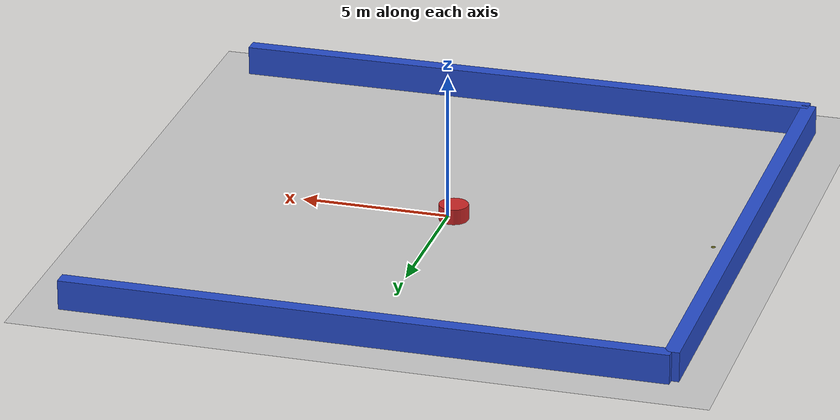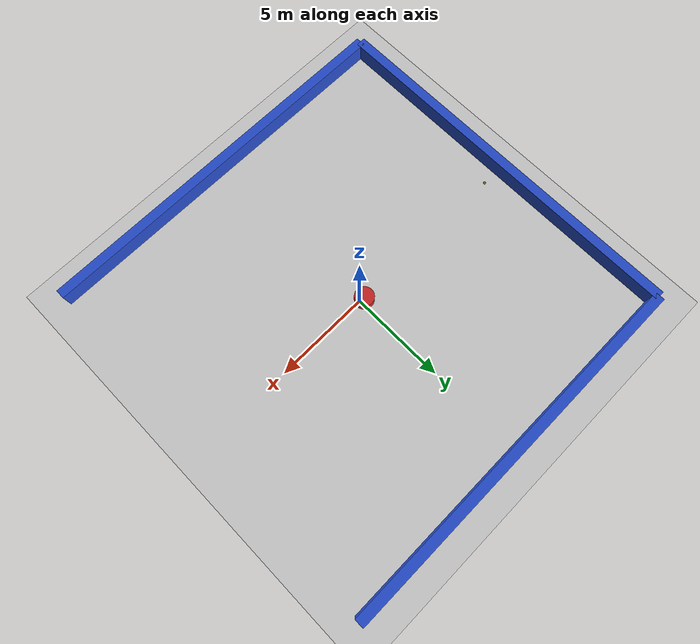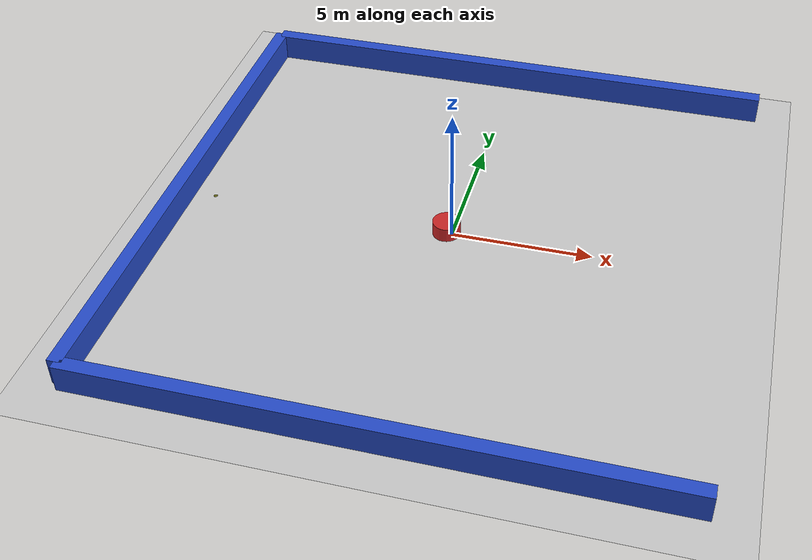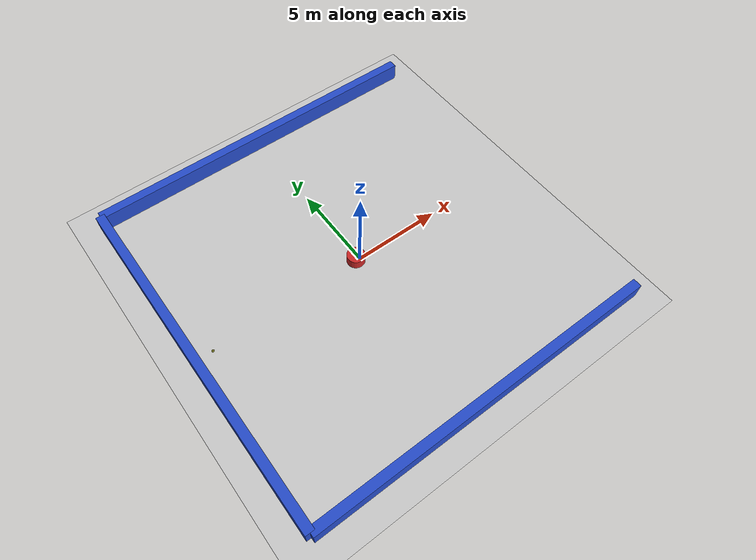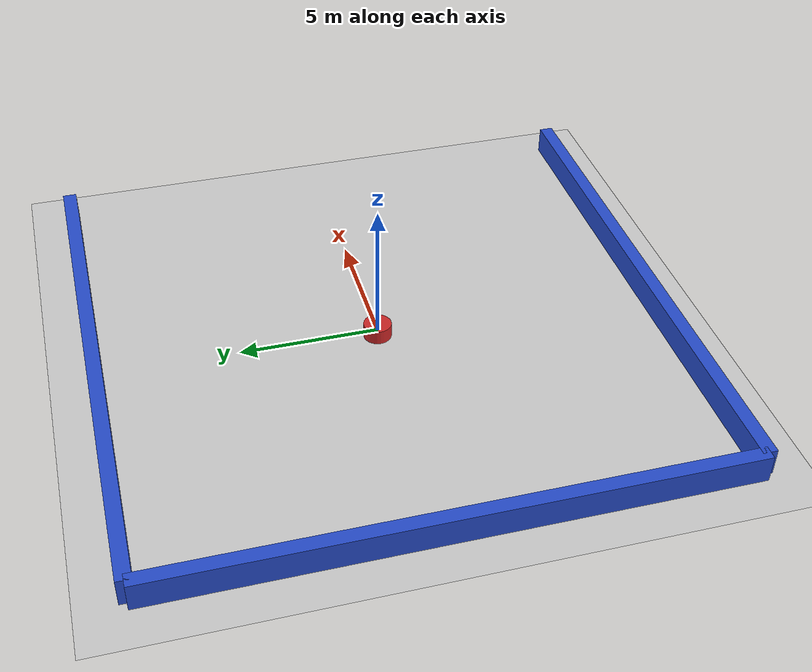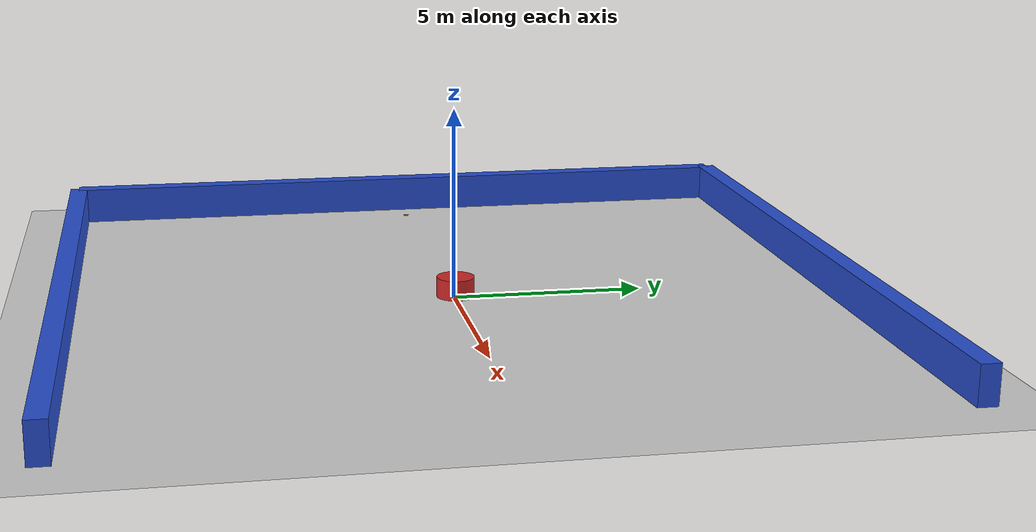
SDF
<sdf version="1.6">
   <world name="default">
      <include>
         <uri>model://ground_plane</uri>
      </include>
      <include>
         <uri>model://sun</uri>
      </include>

    <model name="hardlibobs_64">
      <static>1</static>
      <pose frame="">-0.225000 0.075000 0.000000 0.000000 0.000000 0.000000</pose>
      <link name="link">
        <inertial>
          <mass>1</mass>
          <inertia>
            <ixx>0.145833</ixx>
            <ixy>0</ixy>
            <ixz>0</ixz>
            <iyy>0.145833</iyy>
            <iyz>0</iyz>
            <izz>0.125</izz>
          </inertia>
        </inertial>
        <collision name="collision">
           <geometry>
            <cylinder>
                <radius>0.5000</radius>
                 <length> 1 </length>
            </cylinder>
          </geometry>
           <surface>
            <contact>
              <ode />
            </contact>
            <bounce />
            <friction>
              <torsional>
                <ode />
              </torsional>
              <ode />
            </friction>
          </surface>
        </collision>
        <visual name="visual">
           <geometry>
            <cylinder>
                <radius>0.5000</radius>
                 <length> 1 </length>
            </cylinder>
          </geometry>
          <material>
            <script>
              <name>Gazebo/Red</name>
              <uri>file://media/materials/scripts/gazebo.material</uri>
            </script>
          </material>
        </visual>
        <self_collide>0</self_collide>
        <kinematic>0</kinematic>
        <gravity>1</gravity>
      </link>
      <plugin name="hardlibobs_64" filename="hardlibobs_64.so" />
    </model>

    <model name="mediumlibobs_36">
      <static>1</static>
      <pose frame="">-0.225000 0.075000 0.000000 0.000000 0.000000 0.000000</pose>
      <link name="link">
        <inertial>
          <mass>1</mass>
          <inertia>
            <ixx>0.145833</ixx>
            <ixy>0</ixy>
            <ixz>0</ixz>
            <iyy>0.145833</iyy>
            <iyz>0</iyz>
            <izz>0.125</izz>
          </inertia>
        </inertial>
        <collision name="collision">
           <geometry>
            <cylinder>
                <radius>0.5000</radius>
                 <length> 1 </length>
            </cylinder>
          </geometry>
           <surface>
            <contact>
              <ode />
            </contact>
            <bounce />
            <friction>
              <torsional>
                <ode />
              </torsional>
              <ode />
            </friction>
          </surface>
        </collision>
        <visual name="visual">
           <geometry>
            <cylinder>
                <radius>0.5000</radius>
                 <length> 1 </length>
            </cylinder>
          </geometry>
          <material>
            <script>
              <name>Gazebo/Red</name>
              <uri>file://media/materials/scripts/gazebo.material</uri>
            </script>
          </material>
        </visual>
        <self_collide>0</self_collide>
        <kinematic>0</kinematic>
        <gravity>1</gravity>
      </link>
      <plugin name="mediumlibobs_36" filename="mediumlibobs_36.so" />
    </model>

    <model name="mediumlibobs_2">
      <static>1</static>
      <pose frame="">-0.225000 0.075000 0.000000 0.000000 0.000000 0.000000</pose>
      <link name="link">
        <inertial>
          <mass>1</mass>
          <inertia>
            <ixx>0.145833</ixx>
            <ixy>0</ixy>
            <ixz>0</ixz>
            <iyy>0.145833</iyy>
            <iyz>0</iyz>
            <izz>0.125</izz>
          </inertia>
        </inertial>
        <collision name="collision">
           <geometry>
            <cylinder>
                <radius>0.5000</radius>
                 <length> 1 </length>
            </cylinder>
          </geometry>
           <surface>
            <contact>
              <ode />
            </contact>
            <bounce />
            <friction>
              <torsional>
                <ode />
              </torsional>
              <ode />
            </friction>
          </surface>
        </collision>
        <visual name="visual">
           <geometry>
            <cylinder>
                <radius>0.5000</radius>
                 <length> 1 </length>
            </cylinder>
          </geometry>
          <material>
            <script>
              <name>Gazebo/Red</name>
              <uri>file://media/materials/scripts/gazebo.material</uri>
            </script>
          </material>
        </visual>
        <self_collide>0</self_collide>
        <kinematic>0</kinematic>
        <gravity>1</gravity>
      </link>
      <plugin name="mediumlibobs_2" filename="mediumlibobs_2.so" />
    </model>

    <model name="hardlibobs_157">
      <static>1</static>
      <pose frame="">-0.225000 0.075000 0.000000 0.000000 0.000000 0.000000</pose>
      <link name="link">
        <inertial>
          <mass>1</mass>
          <inertia>
            <ixx>0.145833</ixx>
            <ixy>0</ixy>
            <ixz>0</ixz>
            <iyy>0.145833</iyy>
            <iyz>0</iyz>
            <izz>0.125</izz>
          </inertia>
        </inertial>
        <collision name="collision">
           <geometry>
            <cylinder>
                <radius>0.5000</radius>
                 <length> 1 </length>
            </cylinder>
          </geometry>
           <surface>
            <contact>
              <ode />
            </contact>
            <bounce />
            <friction>
              <torsional>
                <ode />
              </torsional>
              <ode />
            </friction>
          </surface>
        </collision>
        <visual name="visual">
           <geometry>
            <cylinder>
                <radius>0.5000</radius>
                 <length> 1 </length>
            </cylinder>
          </geometry>
          <material>
            <script>
              <name>Gazebo/Red</name>
              <uri>file://media/materials/scripts/gazebo.material</uri>
            </script>
          </material>
        </visual>
        <self_collide>0</self_collide>
        <kinematic>0</kinematic>
        <gravity>1</gravity>
      </link>
      <plugin name="hardlibobs_157" filename="hardlibobs_157.so" />
    </model>

    <model name="hardlibobs_139">
      <static>1</static>
      <pose frame="">-0.225000 0.075000 0.000000 0.000000 0.000000 0.000000</pose>
      <link name="link">
        <inertial>
          <mass>1</mass>
          <inertia>
            <ixx>0.145833</ixx>
            <ixy>0</ixy>
            <ixz>0</ixz>
            <iyy>0.145833</iyy>
            <iyz>0</iyz>
            <izz>0.125</izz>
          </inertia>
        </inertial>
        <collision name="collision">
           <geometry>
            <cylinder>
                <radius>0.5000</radius>
                 <length> 1 </length>
            </cylinder>
          </geometry>
           <surface>
            <contact>
              <ode />
            </contact>
            <bounce />
            <friction>
              <torsional>
                <ode />
              </torsional>
              <ode />
            </friction>
          </surface>
        </collision>
        <visual name="visual">
           <geometry>
            <cylinder>
                <radius>0.5000</radius>
                 <length> 1 </length>
            </cylinder>
          </geometry>
          <material>
            <script>
              <name>Gazebo/Red</name>
              <uri>file://media/materials/scripts/gazebo.material</uri>
            </script>
          </material>
        </visual>
        <self_collide>0</self_collide>
        <kinematic>0</kinematic>
        <gravity>1</gravity>
      </link>
      <plugin name="hardlibobs_139" filename="hardlibobs_139.so" />
    </model>

    <model name="hardlibobs_144">
      <static>1</static>
      <pose frame="">-0.225000 0.075000 0.000000 0.000000 0.000000 0.000000</pose>
      <link name="link">
        <inertial>
          <mass>1</mass>
          <inertia>
            <ixx>0.145833</ixx>
            <ixy>0</ixy>
            <ixz>0</ixz>
            <iyy>0.145833</iyy>
            <iyz>0</iyz>
            <izz>0.125</izz>
          </inertia>
        </inertial>
        <collision name="collision">
           <geometry>
            <cylinder>
                <radius>0.5000</radius>
                 <length> 1 </length>
            </cylinder>
          </geometry>
           <surface>
            <contact>
              <ode />
            </contact>
            <bounce />
            <friction>
              <torsional>
                <ode />
              </torsional>
              <ode />
            </friction>
          </surface>
        </collision>
        <visual name="visual">
           <geometry>
            <cylinder>
                <radius>0.5000</radius>
                 <length> 1 </length>
            </cylinder>
          </geometry>
          <material>
            <script>
              <name>Gazebo/Red</name>
              <uri>file://media/materials/scripts/gazebo.material</uri>
            </script>
          </material>
        </visual>
        <self_collide>0</self_collide>
        <kinematic>0</kinematic>
        <gravity>1</gravity>
      </link>
      <plugin name="hardlibobs_144" filename="hardlibobs_144.so" />
    </model>

    <model name="hardlibobs_190">
      <static>1</static>
      <pose frame="">-0.225000 0.075000 0.000000 0.000000 0.000000 0.000000</pose>
      <link name="link">
        <inertial>
          <mass>1</mass>
          <inertia>
            <ixx>0.145833</ixx>
            <ixy>0</ixy>
            <ixz>0</ixz>
            <iyy>0.145833</iyy>
            <iyz>0</iyz>
            <izz>0.125</izz>
          </inertia>
        </inertial>
        <collision name="collision">
           <geometry>
            <cylinder>
                <radius>0.5000</radius>
                 <length> 1 </length>
            </cylinder>
          </geometry>
           <surface>
            <contact>
              <ode />
            </contact>
            <bounce />
            <friction>
              <torsional>
                <ode />
              </torsional>
              <ode />
            </friction>
          </surface>
        </collision>
        <visual name="visual">
           <geometry>
            <cylinder>
                <radius>0.5000</radius>
                 <length> 1 </length>
            </cylinder>
          </geometry>
          <material>
            <script>
              <name>Gazebo/Red</name>
              <uri>file://media/materials/scripts/gazebo.material</uri>
            </script>
          </material>
        </visual>
        <self_collide>0</self_collide>
        <kinematic>0</kinematic>
        <gravity>1</gravity>
      </link>
      <plugin name="hardlibobs_190" filename="hardlibobs_190.so" />
    </model>

    <model name="mediumlibobs_54">
      <static>1</static>
      <pose frame="">-0.225000 0.075000 0.000000 0.000000 0.000000 0.000000</pose>
      <link name="link">
        <inertial>
          <mass>1</mass>
          <inertia>
            <ixx>0.145833</ixx>
            <ixy>0</ixy>
            <ixz>0</ixz>
            <iyy>0.145833</iyy>
            <iyz>0</iyz>
            <izz>0.125</izz>
          </inertia>
        </inertial>
        <collision name="collision">
           <geometry>
            <cylinder>
                <radius>0.5000</radius>
                 <length> 1 </length>
            </cylinder>
          </geometry>
           <surface>
            <contact>
              <ode />
            </contact>
            <bounce />
            <friction>
              <torsional>
                <ode />
              </torsional>
              <ode />
            </friction>
          </surface>
        </collision>
        <visual name="visual">
           <geometry>
            <cylinder>
                <radius>0.5000</radius>
                 <length> 1 </length>
            </cylinder>
          </geometry>
          <material>
            <script>
              <name>Gazebo/Red</name>
              <uri>file://media/materials/scripts/gazebo.material</uri>
            </script>
          </material>
        </visual>
        <self_collide>0</self_collide>
        <kinematic>0</kinematic>
        <gravity>1</gravity>
      </link>
      <plugin name="mediumlibobs_54" filename="mediumlibobs_54.so" />
    </model>

    <model name="hardlibobs_117">
      <static>1</static>
      <pose frame="">-0.225000 0.075000 0.000000 0.000000 0.000000 0.000000</pose>
      <link name="link">
        <inertial>
          <mass>1</mass>
          <inertia>
            <ixx>0.145833</ixx>
            <ixy>0</ixy>
            <ixz>0</ixz>
            <iyy>0.145833</iyy>
            <iyz>0</iyz>
            <izz>0.125</izz>
          </inertia>
        </inertial>
        <collision name="collision">
           <geometry>
            <cylinder>
                <radius>0.5000</radius>
                 <length> 1 </length>
            </cylinder>
          </geometry>
           <surface>
            <contact>
              <ode />
            </contact>
            <bounce />
            <friction>
              <torsional>
                <ode />
              </torsional>
              <ode />
            </friction>
          </surface>
        </collision>
        <visual name="visual">
           <geometry>
            <cylinder>
                <radius>0.5000</radius>
                 <length> 1 </length>
            </cylinder>
          </geometry>
          <material>
            <script>
              <name>Gazebo/Red</name>
              <uri>file://media/materials/scripts/gazebo.material</uri>
            </script>
          </material>
        </visual>
        <self_collide>0</self_collide>
        <kinematic>0</kinematic>
        <gravity>1</gravity>
      </link>
      <plugin name="hardlibobs_117" filename="hardlibobs_117.so" />
    </model>

    <model name="mediumlibobs_77">
      <static>1</static>
      <pose frame="">-0.225000 0.075000 0.000000 0.000000 0.000000 0.000000</pose>
      <link name="link">
        <inertial>
          <mass>1</mass>
          <inertia>
            <ixx>0.145833</ixx>
            <ixy>0</ixy>
            <ixz>0</ixz>
            <iyy>0.145833</iyy>
            <iyz>0</iyz>
            <izz>0.125</izz>
          </inertia>
        </inertial>
        <collision name="collision">
           <geometry>
            <cylinder>
                <radius>0.5000</radius>
                 <length> 1 </length>
            </cylinder>
          </geometry>
           <surface>
            <contact>
              <ode />
            </contact>
            <bounce />
            <friction>
              <torsional>
                <ode />
              </torsional>
              <ode />
            </friction>
          </surface>
        </collision>
        <visual name="visual">
           <geometry>
            <cylinder>
                <radius>0.5000</radius>
                 <length> 1 </length>
            </cylinder>
          </geometry>
          <material>
            <script>
              <name>Gazebo/Red</name>
              <uri>file://media/materials/scripts/gazebo.material</uri>
            </script>
          </material>
        </visual>
        <self_collide>0</self_collide>
        <kinematic>0</kinematic>
        <gravity>1</gravity>
      </link>
      <plugin name="mediumlibobs_77" filename="mediumlibobs_77.so" />
    </model>

    <model name="hardlibobs_21">
      <static>1</static>
      <pose frame="">-0.225000 0.075000 0.000000 0.000000 0.000000 0.000000</pose>
      <link name="link">
        <inertial>
          <mass>1</mass>
          <inertia>
            <ixx>0.145833</ixx>
            <ixy>0</ixy>
            <ixz>0</ixz>
            <iyy>0.145833</iyy>
            <iyz>0</iyz>
            <izz>0.125</izz>
          </inertia>
        </inertial>
        <collision name="collision">
           <geometry>
            <cylinder>
                <radius>0.5000</radius>
                 <length> 1 </length>
            </cylinder>
          </geometry>
           <surface>
            <contact>
              <ode />
            </contact>
            <bounce />
            <friction>
              <torsional>
                <ode />
              </torsional>
              <ode />
            </friction>
          </surface>
        </collision>
        <visual name="visual">
           <geometry>
            <cylinder>
                <radius>0.5000</radius>
                 <length> 1 </length>
            </cylinder>
          </geometry>
          <material>
            <script>
              <name>Gazebo/Red</name>
              <uri>file://media/materials/scripts/gazebo.material</uri>
            </script>
          </material>
        </visual>
        <self_collide>0</self_collide>
        <kinematic>0</kinematic>
        <gravity>1</gravity>
      </link>
      <plugin name="hardlibobs_21" filename="hardlibobs_21.so" />
    </model>

    <model name="mediumlibobs_150">
      <static>1</static>
      <pose frame="">-0.225000 0.075000 0.000000 0.000000 0.000000 0.000000</pose>
      <link name="link">
        <inertial>
          <mass>1</mass>
          <inertia>
            <ixx>0.145833</ixx>
            <ixy>0</ixy>
            <ixz>0</ixz>
            <iyy>0.145833</iyy>
            <iyz>0</iyz>
            <izz>0.125</izz>
          </inertia>
        </inertial>
        <collision name="collision">
           <geometry>
            <cylinder>
                <radius>0.5000</radius>
                 <length> 1 </length>
            </cylinder>
          </geometry>
           <surface>
            <contact>
              <ode />
            </contact>
            <bounce />
            <friction>
              <torsional>
                <ode />
              </torsional>
              <ode />
            </friction>
          </surface>
        </collision>
        <visual name="visual">
           <geometry>
            <cylinder>
                <radius>0.5000</radius>
                 <length> 1 </length>
            </cylinder>
          </geometry>
          <material>
            <script>
              <name>Gazebo/Red</name>
              <uri>file://media/materials/scripts/gazebo.material</uri>
            </script>
          </material>
        </visual>
        <self_collide>0</self_collide>
        <kinematic>0</kinematic>
        <gravity>1</gravity>
      </link>
      <plugin name="mediumlibobs_150" filename="mediumlibobs_150.so" />
    </model>

    <model name="mediumlibobs_199">
      <static>1</static>
      <pose frame="">-0.225000 0.075000 0.000000 0.000000 0.000000 0.000000</pose>
      <link name="link">
        <inertial>
          <mass>1</mass>
          <inertia>
            <ixx>0.145833</ixx>
            <ixy>0</ixy>
            <ixz>0</ixz>
            <iyy>0.145833</iyy>
            <iyz>0</iyz>
            <izz>0.125</izz>
          </inertia>
        </inertial>
        <collision name="collision">
           <geometry>
            <cylinder>
                <radius>0.5000</radius>
                 <length> 1 </length>
            </cylinder>
          </geometry>
           <surface>
            <contact>
              <ode />
            </contact>
            <bounce />
            <friction>
              <torsional>
                <ode />
              </torsional>
              <ode />
            </friction>
          </surface>
        </collision>
        <visual name="visual">
           <geometry>
            <cylinder>
                <radius>0.5000</radius>
                 <length> 1 </length>
            </cylinder>
          </geometry>
          <material>
            <script>
              <name>Gazebo/Red</name>
              <uri>file://media/materials/scripts/gazebo.material</uri>
            </script>
          </material>
        </visual>
        <self_collide>0</self_collide>
        <kinematic>0</kinematic>
        <gravity>1</gravity>
      </link>
      <plugin name="mediumlibobs_199" filename="mediumlibobs_199.so" />
    </model>

    <model name="hardlibobs_65">
      <static>1</static>
      <pose frame="">-0.225000 0.075000 0.000000 0.000000 0.000000 0.000000</pose>
      <link name="link">
        <inertial>
          <mass>1</mass>
          <inertia>
            <ixx>0.145833</ixx>
            <ixy>0</ixy>
            <ixz>0</ixz>
            <iyy>0.145833</iyy>
            <iyz>0</iyz>
            <izz>0.125</izz>
          </inertia>
        </inertial>
        <collision name="collision">
           <geometry>
            <cylinder>
                <radius>0.5000</radius>
                 <length> 1 </length>
            </cylinder>
          </geometry>
           <surface>
            <contact>
              <ode />
            </contact>
            <bounce />
            <friction>
              <torsional>
                <ode />
              </torsional>
              <ode />
            </friction>
          </surface>
        </collision>
        <visual name="visual">
           <geometry>
            <cylinder>
                <radius>0.5000</radius>
                 <length> 1 </length>
            </cylinder>
          </geometry>
          <material>
            <script>
              <name>Gazebo/Red</name>
              <uri>file://media/materials/scripts/gazebo.material</uri>
            </script>
          </material>
        </visual>
        <self_collide>0</self_collide>
        <kinematic>0</kinematic>
        <gravity>1</gravity>
      </link>
      <plugin name="hardlibobs_65" filename="hardlibobs_65.so" />
    </model>

    <model name="hardlibobs_153">
      <static>1</static>
      <pose frame="">-0.225000 0.075000 0.000000 0.000000 0.000000 0.000000</pose>
      <link name="link">
        <inertial>
          <mass>1</mass>
          <inertia>
            <ixx>0.145833</ixx>
            <ixy>0</ixy>
            <ixz>0</ixz>
            <iyy>0.145833</iyy>
            <iyz>0</iyz>
            <izz>0.125</izz>
          </inertia>
        </inertial>
        <collision name="collision">
           <geometry>
            <cylinder>
                <radius>0.5000</radius>
                 <length> 1 </length>
            </cylinder>
          </geometry>
           <surface>
            <contact>
              <ode />
            </contact>
            <bounce />
            <friction>
              <torsional>
                <ode />
              </torsional>
              <ode />
            </friction>
          </surface>
        </collision>
        <visual name="visual">
           <geometry>
            <cylinder>
                <radius>0.5000</radius>
                 <length> 1 </length>
            </cylinder>
          </geometry>
          <material>
            <script>
              <name>Gazebo/Red</name>
              <uri>file://media/materials/scripts/gazebo.material</uri>
            </script>
          </material>
        </visual>
        <self_collide>0</self_collide>
        <kinematic>0</kinematic>
        <gravity>1</gravity>
      </link>
      <plugin name="hardlibobs_153" filename="hardlibobs_153.so" />
    </model>

    <model name="hardlibobs_96">
      <static>1</static>
      <pose frame="">-0.225000 0.075000 0.000000 0.000000 0.000000 0.000000</pose>
      <link name="link">
        <inertial>
          <mass>1</mass>
          <inertia>
            <ixx>0.145833</ixx>
            <ixy>0</ixy>
            <ixz>0</ixz>
            <iyy>0.145833</iyy>
            <iyz>0</iyz>
            <izz>0.125</izz>
          </inertia>
        </inertial>
        <collision name="collision">
           <geometry>
            <cylinder>
                <radius>0.5000</radius>
                 <length> 1 </length>
            </cylinder>
          </geometry>
           <surface>
            <contact>
              <ode />
            </contact>
            <bounce />
            <friction>
              <torsional>
                <ode />
              </torsional>
              <ode />
            </friction>
          </surface>
        </collision>
        <visual name="visual">
           <geometry>
            <cylinder>
                <radius>0.5000</radius>
                 <length> 1 </length>
            </cylinder>
          </geometry>
          <material>
            <script>
              <name>Gazebo/Red</name>
              <uri>file://media/materials/scripts/gazebo.material</uri>
            </script>
          </material>
        </visual>
        <self_collide>0</self_collide>
        <kinematic>0</kinematic>
        <gravity>1</gravity>
      </link>
      <plugin name="hardlibobs_96" filename="hardlibobs_96.so" />
    </model>

    <model name="mediumlibobs_44">
      <static>1</static>
      <pose frame="">-0.225000 0.075000 0.000000 0.000000 0.000000 0.000000</pose>
      <link name="link">
        <inertial>
          <mass>1</mass>
          <inertia>
            <ixx>0.145833</ixx>
            <ixy>0</ixy>
            <ixz>0</ixz>
            <iyy>0.145833</iyy>
            <iyz>0</iyz>
            <izz>0.125</izz>
          </inertia>
        </inertial>
        <collision name="collision">
           <geometry>
            <cylinder>
                <radius>0.5000</radius>
                 <length> 1 </length>
            </cylinder>
          </geometry>
           <surface>
            <contact>
              <ode />
            </contact>
            <bounce />
            <friction>
              <torsional>
                <ode />
              </torsional>
              <ode />
            </friction>
          </surface>
        </collision>
        <visual name="visual">
           <geometry>
            <cylinder>
                <radius>0.5000</radius>
                 <length> 1 </length>
            </cylinder>
          </geometry>
          <material>
            <script>
              <name>Gazebo/Red</name>
              <uri>file://media/materials/scripts/gazebo.material</uri>
            </script>
          </material>
        </visual>
        <self_collide>0</self_collide>
        <kinematic>0</kinematic>
        <gravity>1</gravity>
      </link>
      <plugin name="mediumlibobs_44" filename="mediumlibobs_44.so" />
    </model>

    <model name="hardlibobs_26">
      <static>1</static>
      <pose frame="">-0.225000 0.075000 0.000000 0.000000 0.000000 0.000000</pose>
      <link name="link">
        <inertial>
          <mass>1</mass>
          <inertia>
            <ixx>0.145833</ixx>
            <ixy>0</ixy>
            <ixz>0</ixz>
            <iyy>0.145833</iyy>
            <iyz>0</iyz>
            <izz>0.125</izz>
          </inertia>
        </inertial>
        <collision name="collision">
           <geometry>
            <cylinder>
                <radius>0.5000</radius>
                 <length> 1 </length>
            </cylinder>
          </geometry>
           <surface>
            <contact>
              <ode />
            </contact>
            <bounce />
            <friction>
              <torsional>
                <ode />
              </torsional>
              <ode />
            </friction>
          </surface>
        </collision>
        <visual name="visual">
           <geometry>
            <cylinder>
                <radius>0.5000</radius>
                 <length> 1 </length>
            </cylinder>
          </geometry>
          <material>
            <script>
              <name>Gazebo/Red</name>
              <uri>file://media/materials/scripts/gazebo.material</uri>
            </script>
          </material>
        </visual>
        <self_collide>0</self_collide>
        <kinematic>0</kinematic>
        <gravity>1</gravity>
      </link>
      <plugin name="hardlibobs_26" filename="hardlibobs_26.so" />
    </model>

    <model name="hardlibobs_37">
      <static>1</static>
      <pose frame="">-0.225000 0.075000 0.000000 0.000000 0.000000 0.000000</pose>
      <link name="link">
        <inertial>
          <mass>1</mass>
          <inertia>
            <ixx>0.145833</ixx>
            <ixy>0</ixy>
            <ixz>0</ixz>
            <iyy>0.145833</iyy>
            <iyz>0</iyz>
            <izz>0.125</izz>
          </inertia>
        </inertial>
        <collision name="collision">
           <geometry>
            <cylinder>
                <radius>0.5000</radius>
                 <length> 1 </length>
            </cylinder>
          </geometry>
           <surface>
            <contact>
              <ode />
            </contact>
            <bounce />
            <friction>
              <torsional>
                <ode />
              </torsional>
              <ode />
            </friction>
          </surface>
        </collision>
        <visual name="visual">
           <geometry>
            <cylinder>
                <radius>0.5000</radius>
                 <length> 1 </length>
            </cylinder>
          </geometry>
          <material>
            <script>
              <name>Gazebo/Red</name>
              <uri>file://media/materials/scripts/gazebo.material</uri>
            </script>
          </material>
        </visual>
        <self_collide>0</self_collide>
        <kinematic>0</kinematic>
        <gravity>1</gravity>
      </link>
      <plugin name="hardlibobs_37" filename="hardlibobs_37.so" />
    </model>

      <model name="back_wall">
      <static>1</static>\   <pose frame="">-10 0 .5 0 0 0</pose>        <link name="box_link">

	<collision name="collision">
            <geometry>
              <box>
                <size>.5 20 1</size>
              </box>
            </geometry>
           <surface>
            <contact>
              <ode />
            </contact>
            <bounce />
            <friction>
              <torsional>
                <ode />
              </torsional>
              <ode />
            </friction>
          </surface>
        </collision>

          <visual name="visual">
            <geometry>
              <box>
                <size>.5 20 1</size>
              </box>
            </geometry>
          <material>
                 <script>
                     <name>Gazebo/Blue</name>
                         <uri>file://media/materials/scripts/gazebo.material</uri>
                         </script>
                     </material>
          </visual>
        </link>
      </model>
      <model name="top_wall">
      <static>1</static>
       <pose frame="">0 10 .5 0 0 0</pose>        <link name="box_link">

	<collision name="collision">
           <geometry>
              <box>
                <size>20 .5 1</size>
              </box>
            </geometry>
           <surface>
            <contact>
              <ode />
            </contact>
            <bounce />
            <friction>
              <torsional>
                <ode />
              </torsional>
              <ode />
            </friction>
          </surface>
        </collision>
          <visual name="visual">
            <geometry>
              <box>
                <size>20 .5 1</size>
              </box>
            </geometry>
          <material>
                 <script>
                     <name>Gazebo/Blue</name>
                         <uri>file://media/materials/scripts/gazebo.material</uri>
                         </script>
                     </material>
          </visual>
        </link>
      </model>
      <model name="bottom_wall">
      <static>1</static>
       <pose frame="">0 -10 .5 0 0 0</pose>        <link name="box_link">
	<collision name="collision">
            <geometry>
              <box>
                <size>20 .5 1</size>
              </box>
            </geometry>
           <surface>
            <contact>
              <ode />
            </contact>
            <bounce />
            <friction>
              <torsional>
                <ode />
              </torsional>
              <ode />
            </friction>
          </surface>
        </collision>
          <visual name="visual">
            <geometry>
              <box>
                <size>20 .5 1</size>
              </box>
            </geometry>
          <material>
                 <script>
                     <name>Gazebo/Blue</name>
                         <uri>file://media/materials/scripts/gazebo.material</uri>
                         </script>
                     </material>
          </visual>
        </link>
      </model>
   <model name="goal"><static>1</static><pose frame="">-9.00000 0.000000 0.000000 0.000000 0.000000 0.000000</pose><link name="link"><inertial><mass>1</mass><inertia><ixx>0.145833</ixx><ixy>0</ixy><ixz>0</ixz><iyy>0.145833</iyy><iyz>0</iyz><izz>0.125</izz></inertia></inertial><collision name="collision"><geometry><cylinder><radius>0.075000</radius><length>1</length></cylinder></geometry><max_contacts>10</max_contacts><surface><contact><ode /></contact><bounce /><friction><torsional><ode /></torsional><ode /></friction></surface></collision><visual name="visual"><geometry><cylinder><radius>0.075000</radius><length>0.001</length></cylinder></geometry><material><ambient>0 1 0 1</ambient><diffuse>0.4 0.4 0.1 1</diffuse></material><material><script><name>Gazebo/Grey</name><uri>file://media/materials/scripts/gazebo.material</uri></script></material></visual><self_collide>0</self_collide><kinematic>0</kinematic><gravity>0</gravity></link></model></world>
</sdf>
